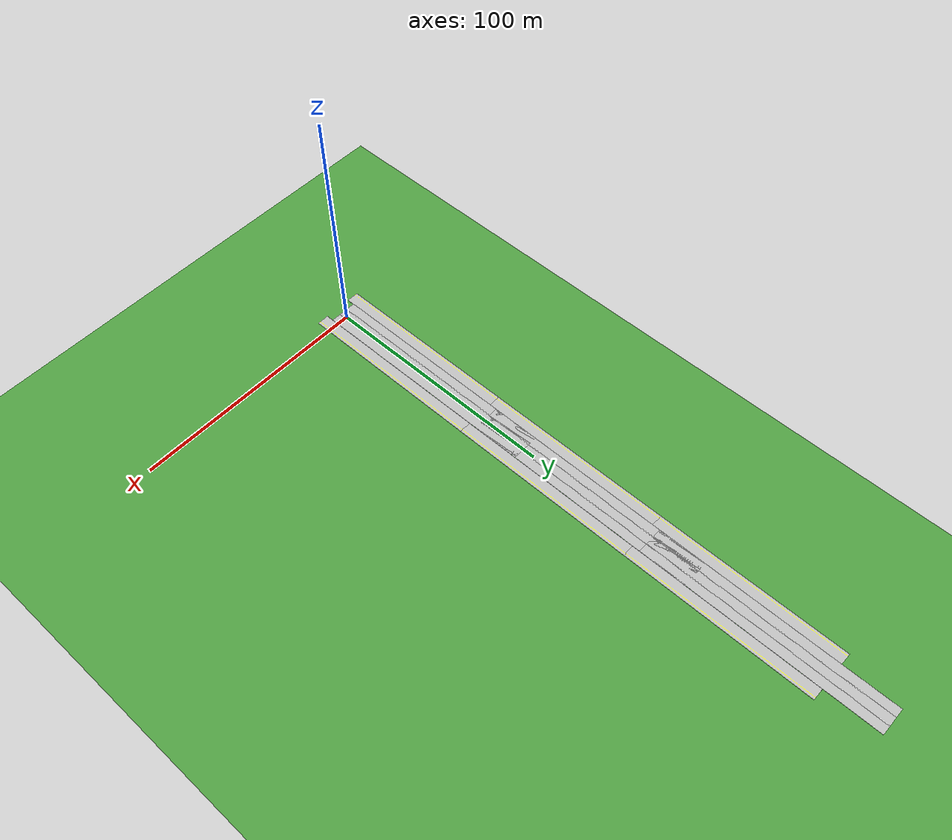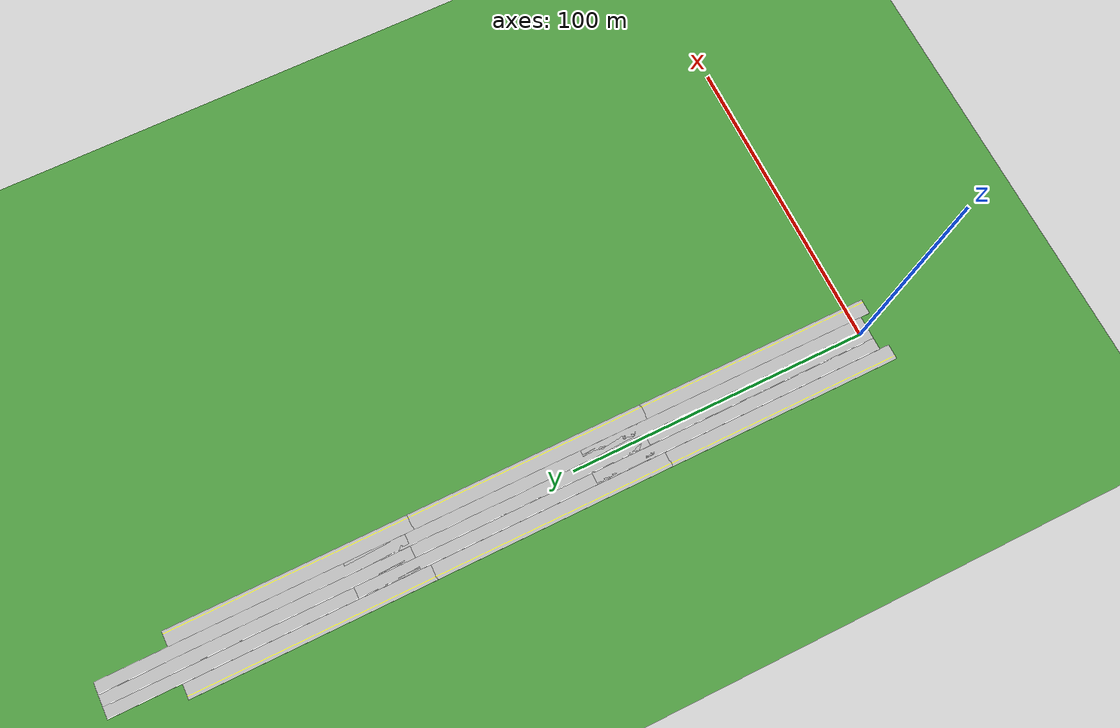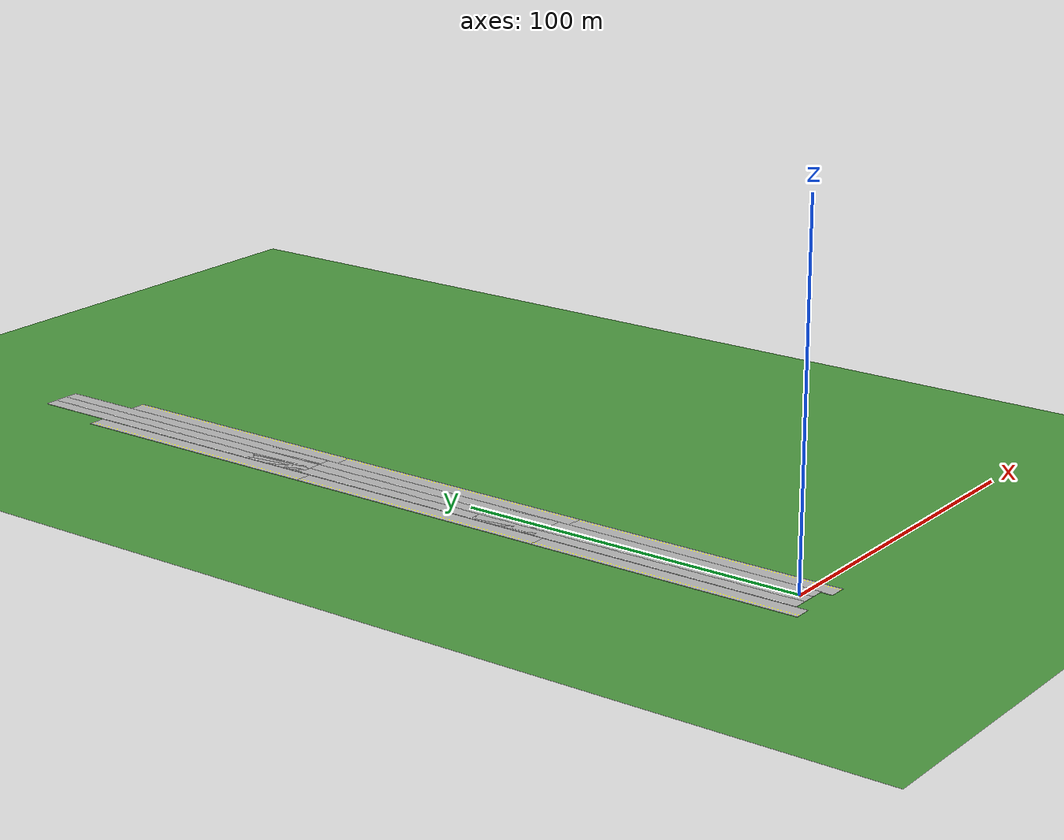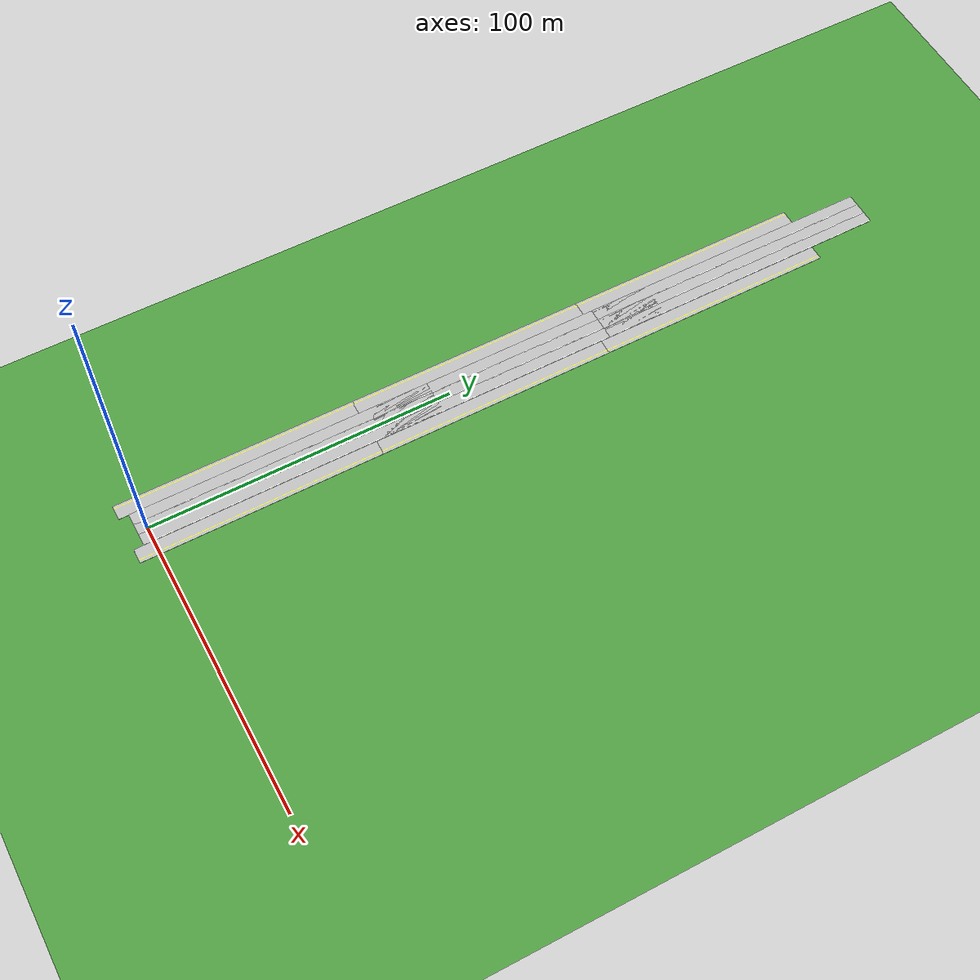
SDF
<sdf version="1.6">
 <world name="default">
  <light name="sun" type="directional">
   <pose>0 0 10 0 -0 0</pose>
   <diffuse>0.8 0.8 0.8 1</diffuse>
   <specular>0.2 0.2 0.2 1</specular>
   <attenuation>
    <range>1000</range>
    <constant>0.9</constant>
    <linear>0.01</linear>
    <quadratic>0.001</quadratic>
   </attenuation>
   <direction>-0.5 0.1 -0.9</direction>
  </light>
  <model name="ground_plane">
   <static>1</static>
   <link name="link">
    <collision name="collision">
     <geometry><plane><normal>0 0 1</normal><size>100 100</size></plane></geometry>
     <surface><friction><ode><mu>100</mu><mu2>50</mu2></ode></friction></surface>
    </collision>
    <visual name="visual">
     <cast_shadows>0</cast_shadows>
     <geometry><plane><normal>0 0 1</normal><size>10000 10000</size></plane></geometry>
     <material>
      <script>
       <uri>model://ds_grass_background/materials/scripts</uri>
       <uri>model://ds_grass_background/materials/textures</uri>
       <name>GrassBackground</name>
      </script>
     </material>
    </visual>
   </link>
  </model>
  <gravity>0 0 -9.8</gravity>
  <magnetic_field>6e-06 2.3e-05 -4.2e-05</magnetic_field>
  <atmosphere type="adiabatic"/>
  <physics name="default_physics" default="0" type="ode">
   <max_step_size>0.001</max_step_size>
   <real_time_factor>1</real_time_factor>
   <real_time_update_rate>1000</real_time_update_rate>
  </physics>
  <scene>
   <ambient>0.4 0.4 0.4 1</ambient>
   <background>0.7 0.7 0.7 1</background>
   <shadows>1</shadows>
   <grid>0</grid>
  </scene>
  <spherical_coordinates>
   <surface_model>EARTH_WGS84</surface_model>
   <latitude_deg>0</latitude_deg>
   <longitude_deg>0</longitude_deg>
   <elevation>0</elevation>
   <heading_deg>0</heading_deg>
  </spherical_coordinates>
  <model name="5line">
   <model name="center_road">
    <link name="link_1">
     <pose>4.5e-05 -4.5e-05 0 0 -0 0</pose>
     <inertial>
      <mass>10000</mass>
      <inertia>
       <ixx>0.166667</ixx>
       <ixy>0</ixy>
       <ixz>0</ixz>
       <iyy>0.166667</iyy>
       <iyz>0</iyz>
       <izz>0.166667</izz>
      </inertia>
     </inertial>
     <visual name="visual">
      <geometry>
       <mesh><uri>/home/obin/catkin_ws/src/dbw_runner/models/center.dae</uri><scale>1 1 1</scale></mesh>
      </geometry>
     </visual>
     <collision name="collision">
      <geometry><mesh><uri>/home/obin/catkin_ws/src/dbw_runner/models/center.dae</uri></mesh></geometry>
     </collision>
    </link>
    <static>1</static>
    <pose>-0.726039 9.53969 0 0 -0 0</pose>
   </model>
   <model name="center_road_0">
    <link name="link_1">
     <pose>4.5e-05 -4.5e-05 0 0 -0 0</pose>
     <inertial>
      <mass>10000</mass>
      <inertia>
       <ixx>0.166667</ixx>
       <ixy>0</ixy>
       <ixz>0</ixz>
       <iyy>0.166667</iyy>
       <iyz>0</iyz>
       <izz>0.166667</izz>
      </inertia>
     </inertial>
     <visual name="visual">
      <geometry>
       <mesh><uri>/home/obin/catkin_ws/src/dbw_runner/models/center.dae</uri><scale>1 1 1</scale></mesh>
      </geometry>
     </visual>
     <collision name="collision">
      <geometry><mesh><uri>/home/obin/catkin_ws/src/dbw_runner/models/center.dae</uri></mesh></geometry>
     </collision>
    </link>
    <static>1</static>
    <pose>-4.52219 9.53073 0 0 -0 0</pose>
   </model>
   <model name="center_road_clone">
    <link name="link_1">
     <pose>4.5e-05 -4.5e-05 0 0 -0 0</pose>
     <inertial>
      <mass>10000</mass>
      <inertia>
       <ixx>0.166667</ixx>
       <ixy>0</ixy>
       <ixz>0</ixz>
       <iyy>0.166667</iyy>
       <iyz>0</iyz>
       <izz>0.166667</izz>
      </inertia>
     </inertial>
     <visual name="visual">
      <geometry>
       <mesh><uri>/home/obin/catkin_ws/src/dbw_runner/models/center.dae</uri><scale>1 1 1</scale></mesh>
      </geometry>
     </visual>
     <collision name="collision">
      <geometry><mesh><uri>/home/obin/catkin_ws/src/dbw_runner/models/center.dae</uri></mesh></geometry>
     </collision>
    </link>
    <static>1</static>
    <pose>3.09991 9.52791 0 0 -0 0</pose>
   </model>
   <model name="left_road">
    <link name="link_2">
     <pose>4e-06 -3.2e-05 0 0 -0 0</pose>
     <inertial>
      <mass>10000</mass>
      <inertia>
       <ixx>0.166667</ixx>
       <ixy>0</ixy>
       <ixz>0</ixz>
       <iyy>0.166667</iyy>
       <iyz>0</iyz>
       <izz>0.166667</izz>
      </inertia>
     </inertial>
     <visual name="visual">
      <geometry>
       <mesh><uri>/home/obin/catkin_ws/src/dbw_runner/models/left.dae</uri><scale>1 1 1</scale></mesh>
      </geometry>
     </visual>
     <collision name="collision">
      <geometry><mesh><uri>/home/obin/catkin_ws/src/dbw_runner/models/left.dae</uri></mesh></geometry>
      <surface>
       <friction>
        <ode><mu>1</mu><mu2>1</mu2><fdir1>0 0 0</fdir1><slip1>0</slip1><slip2>0</slip2></ode>
        <torsional>
         <coefficient>1</coefficient>
         <patch_radius>0</patch_radius>
         <surface_radius>0</surface_radius>
         <use_patch_radius>1</use_patch_radius>
         <ode><slip>0</slip></ode>
        </torsional>
       </friction>
       <bounce><restitution_coefficient>0</restitution_coefficient><threshold>1e+06</threshold></bounce>
       <contact>
        <collide_without_contact>0</collide_without_contact>
        <collide_without_contact_bitmask>1</collide_without_contact_bitmask>
        <collide_bitmask>1</collide_bitmask>
        <ode>
         <soft_cfm>0</soft_cfm>
         <soft_erp>0.2</soft_erp>
         <kp>1e+13</kp>
         <kd>1</kd>
         <max_vel>0.01</max_vel>
         <min_depth>0</min_depth>
        </ode>
        <bullet>
         <split_impulse>1</split_impulse>
         <split_impulse_penetration_threshold>-0.01</split_impulse_penetration_threshold>
         <soft_cfm>0</soft_cfm>
         <soft_erp>0.2</soft_erp>
         <kp>1e+13</kp>
         <kd>1</kd>
        </bullet>
       </contact>
      </surface>
     </collision>
    </link>
    <static>1</static>
    <pose>-7.321 11.3862 0 0 -0 0</pose>
   </model>
   <model name="left_road_clone">
    <link name="link_2">
     <pose>4e-06 -3.2e-05 0 0 -0 0</pose>
     <inertial>
      <mass>10000</mass>
      <inertia>
       <ixx>0.166667</ixx>
       <ixy>0</ixy>
       <ixz>0</ixz>
       <iyy>0.166667</iyy>
       <iyz>0</iyz>
       <izz>0.166667</izz>
      </inertia>
     </inertial>
     <visual name="visual">
      <geometry>
       <mesh><uri>/home/obin/catkin_ws/src/dbw_runner/models/left.dae</uri><scale>1 1 1</scale></mesh>
      </geometry>
     </visual>
     <collision name="collision">
      <geometry><mesh><uri>/home/obin/catkin_ws/src/dbw_runner/models/left.dae</uri></mesh></geometry>
      <surface>
       <friction>
        <ode><mu>1</mu><mu2>1</mu2><fdir1>0 0 0</fdir1><slip1>0</slip1><slip2>0</slip2></ode>
        <torsional>
         <coefficient>1</coefficient>
         <patch_radius>0</patch_radius>
         <surface_radius>0</surface_radius>
         <use_patch_radius>1</use_patch_radius>
         <ode><slip>0</slip></ode>
        </torsional>
       </friction>
       <bounce><restitution_coefficient>0</restitution_coefficient><threshold>1e+06</threshold></bounce>
       <contact>
        <collide_without_contact>0</collide_without_contact>
        <collide_without_contact_bitmask>1</collide_without_contact_bitmask>
        <collide_bitmask>1</collide_bitmask>
        <ode>
         <soft_cfm>0</soft_cfm>
         <soft_erp>0.2</soft_erp>
         <kp>1e+13</kp>
         <kd>1</kd>
         <max_vel>0.01</max_vel>
         <min_depth>0</min_depth>
        </ode>
        <bullet>
         <split_impulse>1</split_impulse>
         <split_impulse_penetration_threshold>-0.01</split_impulse_penetration_threshold>
         <soft_cfm>0</soft_cfm>
         <soft_erp>0.2</soft_erp>
         <kp>1e+13</kp>
         <kd>1</kd>
        </bullet>
       </contact>
      </surface>
     </collision>
    </link>
    <static>1</static>
    <pose>7.42076 47.2803 0 0 -0 3.14132</pose>
   </model>
   <static>0</static>
   <pose>-0.901924 3.66442 0 0 -0 0</pose>
  </model>
  <model name="5line_0">
   <model name="center_road">
    <link name="link_1">
     <pose>4.5e-05 -4.5e-05 0 0 -0 0</pose>
     <inertial>
      <mass>10000</mass>
      <inertia>
       <ixx>0.166667</ixx>
       <ixy>0</ixy>
       <ixz>0</ixz>
       <iyy>0.166667</iyy>
       <iyz>0</iyz>
       <izz>0.166667</izz>
      </inertia>
     </inertial>
     <visual name="visual">
      <geometry>
       <mesh><uri>/home/obin/catkin_ws/src/dbw_runner/models/center.dae</uri><scale>1 1 1</scale></mesh>
      </geometry>
     </visual>
     <collision name="collision">
      <geometry><mesh><uri>/home/obin/catkin_ws/src/dbw_runner/models/center.dae</uri></mesh></geometry>
     </collision>
    </link>
    <static>1</static>
    <pose>-0.726039 9.53969 0 0 -0 0</pose>
   </model>
   <model name="center_road_0">
    <link name="link_1">
     <pose>4.5e-05 -4.5e-05 0 0 -0 0</pose>
     <inertial>
      <mass>10000</mass>
      <inertia>
       <ixx>0.166667</ixx>
       <ixy>0</ixy>
       <ixz>0</ixz>
       <iyy>0.166667</iyy>
       <iyz>0</iyz>
       <izz>0.166667</izz>
      </inertia>
     </inertial>
     <visual name="visual">
      <geometry>
       <mesh><uri>/home/obin/catkin_ws/src/dbw_runner/models/center.dae</uri><scale>1 1 1</scale></mesh>
      </geometry>
     </visual>
     <collision name="collision">
      <geometry><mesh><uri>/home/obin/catkin_ws/src/dbw_runner/models/center.dae</uri></mesh></geometry>
     </collision>
    </link>
    <static>1</static>
    <pose>-4.52219 9.53073 0 0 -0 0</pose>
   </model>
   <model name="center_road_clone">
    <link name="link_1">
     <pose>4.5e-05 -4.5e-05 0 0 -0 0</pose>
     <inertial>
      <mass>10000</mass>
      <inertia>
       <ixx>0.166667</ixx>
       <ixy>0</ixy>
       <ixz>0</ixz>
       <iyy>0.166667</iyy>
       <iyz>0</iyz>
       <izz>0.166667</izz>
      </inertia>
     </inertial>
     <visual name="visual">
      <geometry>
       <mesh><uri>/home/obin/catkin_ws/src/dbw_runner/models/center.dae</uri><scale>1 1 1</scale></mesh>
      </geometry>
     </visual>
     <collision name="collision">
      <geometry><mesh><uri>/home/obin/catkin_ws/src/dbw_runner/models/center.dae</uri></mesh></geometry>
     </collision>
    </link>
    <static>1</static>
    <pose>3.09991 9.52791 0 0 -0 0</pose>
   </model>
   <model name="left_road">
    <link name="link_2">
     <pose>4e-06 -3.2e-05 0 0 -0 0</pose>
     <inertial>
      <mass>10000</mass>
      <inertia>
       <ixx>0.166667</ixx>
       <ixy>0</ixy>
       <ixz>0</ixz>
       <iyy>0.166667</iyy>
       <iyz>0</iyz>
       <izz>0.166667</izz>
      </inertia>
     </inertial>
     <visual name="visual">
      <geometry>
       <mesh><uri>/home/obin/catkin_ws/src/dbw_runner/models/left.dae</uri><scale>1 1 1</scale></mesh>
      </geometry>
     </visual>
     <collision name="collision">
      <geometry><mesh><uri>/home/obin/catkin_ws/src/dbw_runner/models/left.dae</uri></mesh></geometry>
      <surface>
       <friction>
        <ode><mu>1</mu><mu2>1</mu2><fdir1>0 0 0</fdir1><slip1>0</slip1><slip2>0</slip2></ode>
        <torsional>
         <coefficient>1</coefficient>
         <patch_radius>0</patch_radius>
         <surface_radius>0</surface_radius>
         <use_patch_radius>1</use_patch_radius>
         <ode><slip>0</slip></ode>
        </torsional>
       </friction>
       <bounce><restitution_coefficient>0</restitution_coefficient><threshold>1e+06</threshold></bounce>
       <contact>
        <collide_without_contact>0</collide_without_contact>
        <collide_without_contact_bitmask>1</collide_without_contact_bitmask>
        <collide_bitmask>1</collide_bitmask>
        <ode>
         <soft_cfm>0</soft_cfm>
         <soft_erp>0.2</soft_erp>
         <kp>1e+13</kp>
         <kd>1</kd>
         <max_vel>0.01</max_vel>
         <min_depth>0</min_depth>
        </ode>
        <bullet>
         <split_impulse>1</split_impulse>
         <split_impulse_penetration_threshold>-0.01</split_impulse_penetration_threshold>
         <soft_cfm>0</soft_cfm>
         <soft_erp>0.2</soft_erp>
         <kp>1e+13</kp>
         <kd>1</kd>
        </bullet>
       </contact>
      </surface>
     </collision>
    </link>
    <static>1</static>
    <pose>-7.321 11.3862 0 0 -0 0</pose>
   </model>
   <model name="left_road_clone">
    <link name="link_2">
     <pose>4e-06 -3.2e-05 0 0 -0 0</pose>
     <inertial>
      <mass>10000</mass>
      <inertia>
       <ixx>0.166667</ixx>
       <ixy>0</ixy>
       <ixz>0</ixz>
       <iyy>0.166667</iyy>
       <iyz>0</iyz>
       <izz>0.166667</izz>
      </inertia>
     </inertial>
     <visual name="visual">
      <geometry>
       <mesh><uri>/home/obin/catkin_ws/src/dbw_runner/models/left.dae</uri><scale>1 1 1</scale></mesh>
      </geometry>
     </visual>
     <collision name="collision">
      <geometry><mesh><uri>/home/obin/catkin_ws/src/dbw_runner/models/left.dae</uri></mesh></geometry>
      <surface>
       <friction>
        <ode><mu>1</mu><mu2>1</mu2><fdir1>0 0 0</fdir1><slip1>0</slip1><slip2>0</slip2></ode>
        <torsional>
         <coefficient>1</coefficient>
         <patch_radius>0</patch_radius>
         <surface_radius>0</surface_radius>
         <use_patch_radius>1</use_patch_radius>
         <ode><slip>0</slip></ode>
        </torsional>
       </friction>
       <bounce><restitution_coefficient>0</restitution_coefficient><threshold>1e+06</threshold></bounce>
       <contact>
        <collide_without_contact>0</collide_without_contact>
        <collide_without_contact_bitmask>1</collide_without_contact_bitmask>
        <collide_bitmask>1</collide_bitmask>
        <ode>
         <soft_cfm>0</soft_cfm>
         <soft_erp>0.2</soft_erp>
         <kp>1e+13</kp>
         <kd>1</kd>
         <max_vel>0.01</max_vel>
         <min_depth>0</min_depth>
        </ode>
        <bullet>
         <split_impulse>1</split_impulse>
         <split_impulse_penetration_threshold>-0.01</split_impulse_penetration_threshold>
         <soft_cfm>0</soft_cfm>
         <soft_erp>0.2</soft_erp>
         <kp>1e+13</kp>
         <kd>1</kd>
        </bullet>
       </contact>
      </surface>
     </collision>
    </link>
    <static>1</static>
    <pose>7.42076 47.2803 0 0 -0 3.14132</pose>
   </model>
   <static>0</static>
   <pose>-0.86826 82.1585 0 0 -0 0</pose>
  </model>
  <model name="5line_0_clone">
   <model name="center_road">
    <link name="link_1">
     <pose>4.5e-05 -4.5e-05 0 0 -0 0</pose>
     <inertial>
      <mass>10000</mass>
      <inertia>
       <ixx>0.166667</ixx>
       <ixy>0</ixy>
       <ixz>0</ixz>
       <iyy>0.166667</iyy>
       <iyz>0</iyz>
       <izz>0.166667</izz>
      </inertia>
     </inertial>
     <visual name="visual">
      <geometry>
       <mesh><uri>/home/obin/catkin_ws/src/dbw_runner/models/center.dae</uri><scale>1 1 1</scale></mesh>
      </geometry>
     </visual>
     <collision name="collision">
      <geometry><mesh><uri>/home/obin/catkin_ws/src/dbw_runner/models/center.dae</uri></mesh></geometry>
     </collision>
    </link>
    <static>1</static>
    <pose>-0.726039 9.53969 0 0 -0 0</pose>
   </model>
   <model name="center_road_0">
    <link name="link_1">
     <pose>4.5e-05 -4.5e-05 0 0 -0 0</pose>
     <inertial>
      <mass>10000</mass>
      <inertia>
       <ixx>0.166667</ixx>
       <ixy>0</ixy>
       <ixz>0</ixz>
       <iyy>0.166667</iyy>
       <iyz>0</iyz>
       <izz>0.166667</izz>
      </inertia>
     </inertial>
     <visual name="visual">
      <geometry>
       <mesh><uri>/home/obin/catkin_ws/src/dbw_runner/models/center.dae</uri><scale>1 1 1</scale></mesh>
      </geometry>
     </visual>
     <collision name="collision">
      <geometry><mesh><uri>/home/obin/catkin_ws/src/dbw_runner/models/center.dae</uri></mesh></geometry>
     </collision>
    </link>
    <static>1</static>
    <pose>-4.52219 9.53073 0 0 -0 0</pose>
   </model>
   <model name="center_road_clone">
    <link name="link_1">
     <pose>4.5e-05 -4.5e-05 0 0 -0 0</pose>
     <inertial>
      <mass>10000</mass>
      <inertia>
       <ixx>0.166667</ixx>
       <ixy>0</ixy>
       <ixz>0</ixz>
       <iyy>0.166667</iyy>
       <iyz>0</iyz>
       <izz>0.166667</izz>
      </inertia>
     </inertial>
     <visual name="visual">
      <geometry>
       <mesh><uri>/home/obin/catkin_ws/src/dbw_runner/models/center.dae</uri><scale>1 1 1</scale></mesh>
      </geometry>
     </visual>
     <collision name="collision">
      <geometry><mesh><uri>/home/obin/catkin_ws/src/dbw_runner/models/center.dae</uri></mesh></geometry>
     </collision>
    </link>
    <static>1</static>
    <pose>3.09991 9.52791 0 0 -0 0</pose>
   </model>
   <model name="left_road">
    <link name="link_2">
     <pose>4e-06 -3.2e-05 0 0 -0 0</pose>
     <inertial>
      <mass>10000</mass>
      <inertia>
       <ixx>0.166667</ixx>
       <ixy>0</ixy>
       <ixz>0</ixz>
       <iyy>0.166667</iyy>
       <iyz>0</iyz>
       <izz>0.166667</izz>
      </inertia>
     </inertial>
     <visual name="visual">
      <geometry>
       <mesh><uri>/home/obin/catkin_ws/src/dbw_runner/models/left.dae</uri><scale>1 1 1</scale></mesh>
      </geometry>
     </visual>
     <collision name="collision">
      <geometry><mesh><uri>/home/obin/catkin_ws/src/dbw_runner/models/left.dae</uri></mesh></geometry>
      <surface>
       <friction>
        <ode><mu>1</mu><mu2>1</mu2><fdir1>0 0 0</fdir1><slip1>0</slip1><slip2>0</slip2></ode>
        <torsional>
         <coefficient>1</coefficient>
         <patch_radius>0</patch_radius>
         <surface_radius>0</surface_radius>
         <use_patch_radius>1</use_patch_radius>
         <ode><slip>0</slip></ode>
        </torsional>
       </friction>
       <bounce><restitution_coefficient>0</restitution_coefficient><threshold>1e+06</threshold></bounce>
       <contact>
        <collide_without_contact>0</collide_without_contact>
        <collide_without_contact_bitmask>1</collide_without_contact_bitmask>
        <collide_bitmask>1</collide_bitmask>
        <ode>
         <soft_cfm>0</soft_cfm>
         <soft_erp>0.2</soft_erp>
         <kp>1e+13</kp>
         <kd>1</kd>
         <max_vel>0.01</max_vel>
         <min_depth>0</min_depth>
        </ode>
        <bullet>
         <split_impulse>1</split_impulse>
         <split_impulse_penetration_threshold>-0.01</split_impulse_penetration_threshold>
         <soft_cfm>0</soft_cfm>
         <soft_erp>0.2</soft_erp>
         <kp>1e+13</kp>
         <kd>1</kd>
        </bullet>
       </contact>
      </surface>
     </collision>
    </link>
    <static>1</static>
    <pose>-7.321 11.3862 0 0 -0 0</pose>
   </model>
   <model name="left_road_clone">
    <link name="link_2">
     <pose>4e-06 -3.2e-05 0 0 -0 0</pose>
     <inertial>
      <mass>10000</mass>
      <inertia>
       <ixx>0.166667</ixx>
       <ixy>0</ixy>
       <ixz>0</ixz>
       <iyy>0.166667</iyy>
       <iyz>0</iyz>
       <izz>0.166667</izz>
      </inertia>
     </inertial>
     <visual name="visual">
      <geometry>
       <mesh><uri>/home/obin/catkin_ws/src/dbw_runner/models/left.dae</uri><scale>1 1 1</scale></mesh>
      </geometry>
     </visual>
     <collision name="collision">
      <geometry><mesh><uri>/home/obin/catkin_ws/src/dbw_runner/models/left.dae</uri></mesh></geometry>
      <surface>
       <friction>
        <ode><mu>1</mu><mu2>1</mu2><fdir1>0 0 0</fdir1><slip1>0</slip1><slip2>0</slip2></ode>
        <torsional>
         <coefficient>1</coefficient>
         <patch_radius>0</patch_radius>
         <surface_radius>0</surface_radius>
         <use_patch_radius>1</use_patch_radius>
         <ode><slip>0</slip></ode>
        </torsional>
       </friction>
       <bounce><restitution_coefficient>0</restitution_coefficient><threshold>1e+06</threshold></bounce>
       <contact>
        <collide_without_contact>0</collide_without_contact>
        <collide_without_contact_bitmask>1</collide_without_contact_bitmask>
        <collide_bitmask>1</collide_bitmask>
        <ode>
         <soft_cfm>0</soft_cfm>
         <soft_erp>0.2</soft_erp>
         <kp>1e+13</kp>
         <kd>1</kd>
         <max_vel>0.01</max_vel>
         <min_depth>0</min_depth>
        </ode>
        <bullet>
         <split_impulse>1</split_impulse>
         <split_impulse_penetration_threshold>-0.01</split_impulse_penetration_threshold>
         <soft_cfm>0</soft_cfm>
         <soft_erp>0.2</soft_erp>
         <kp>1e+13</kp>
         <kd>1</kd>
        </bullet>
       </contact>
      </surface>
     </collision>
    </link>
    <static>1</static>
    <pose>7.42076 47.2803 0 0 -0 3.14132</pose>
   </model>
   <static>0</static>
   <pose>-0.881631 160.665 0 0 -0 0</pose>
  </model>
 </world>
</sdf>
